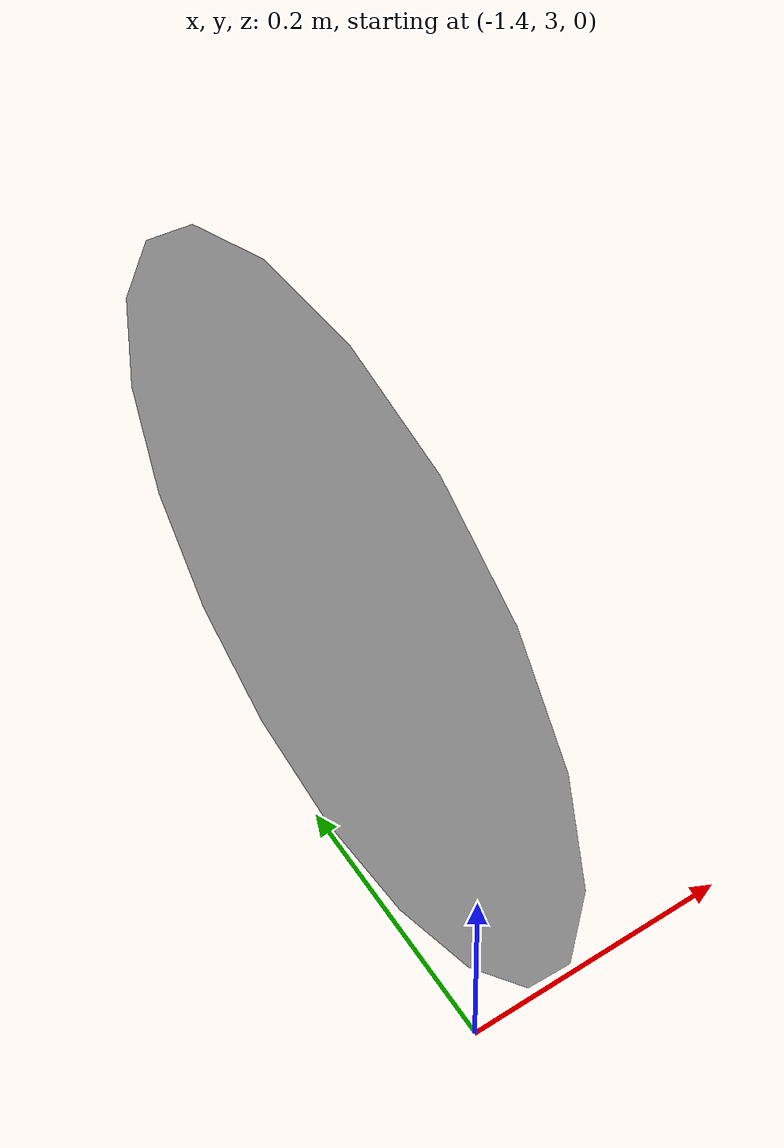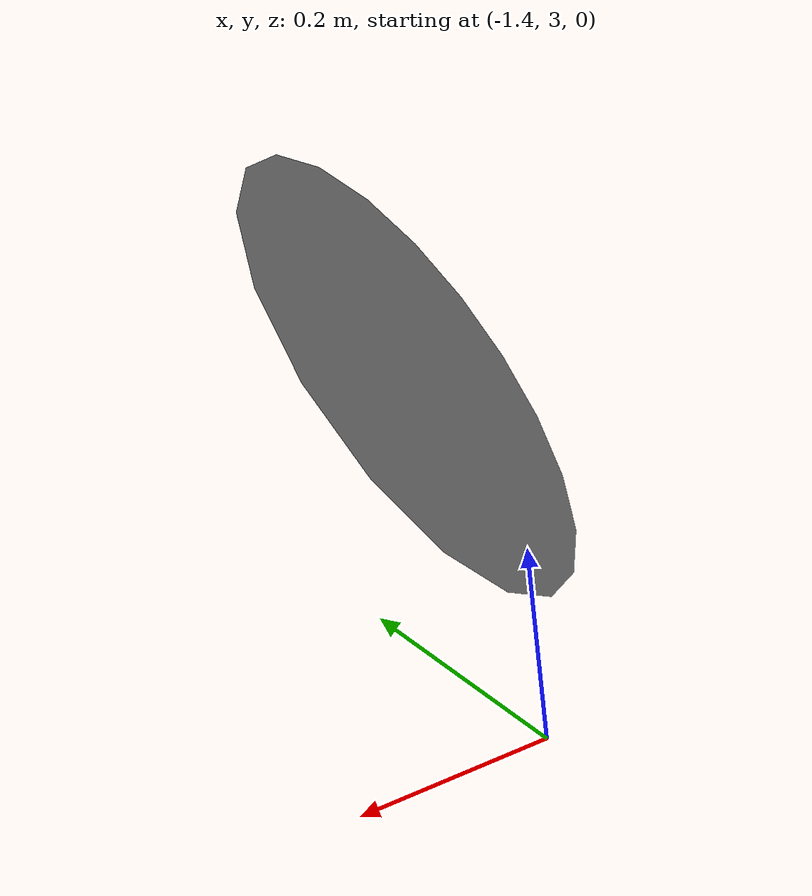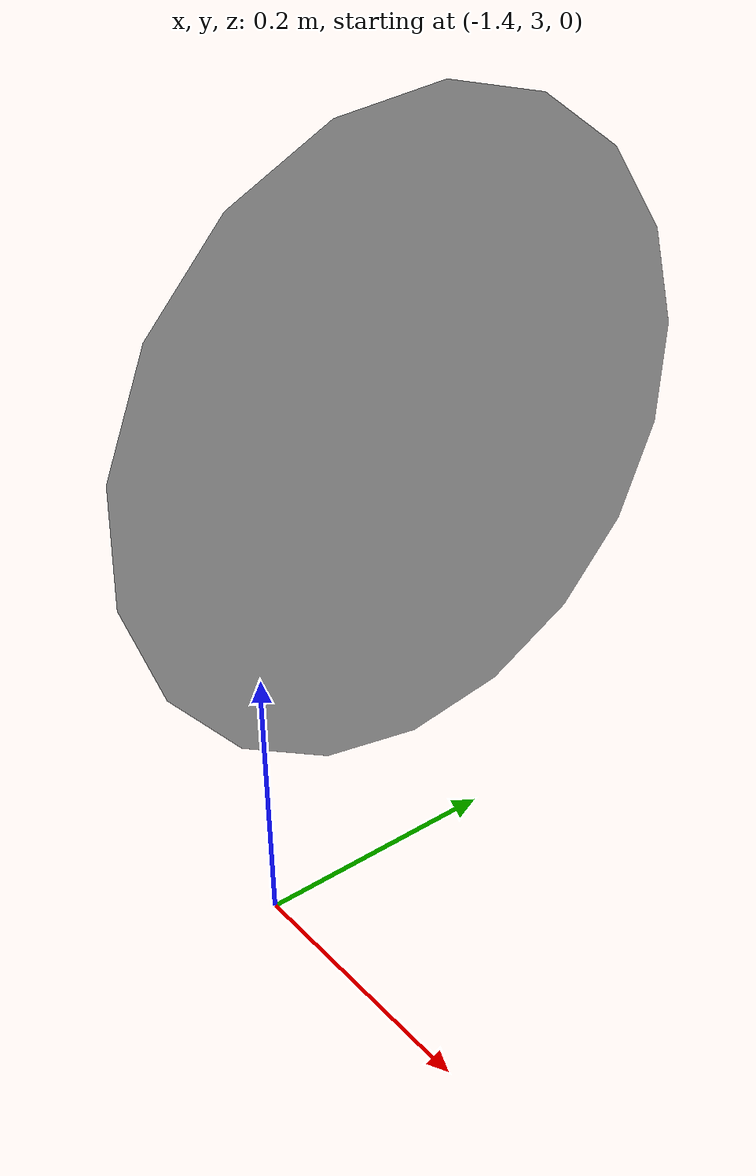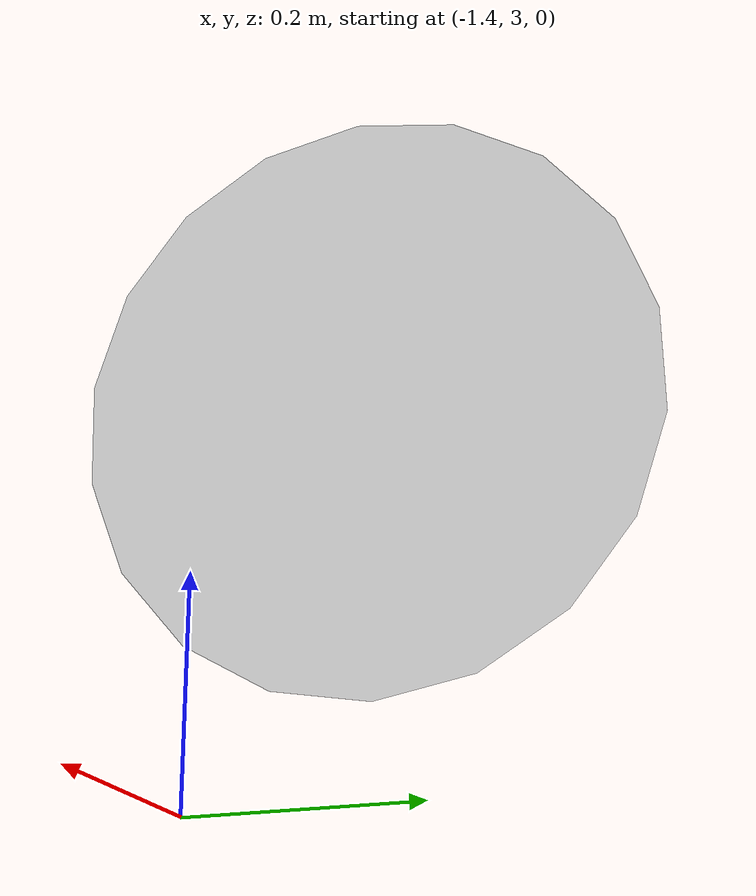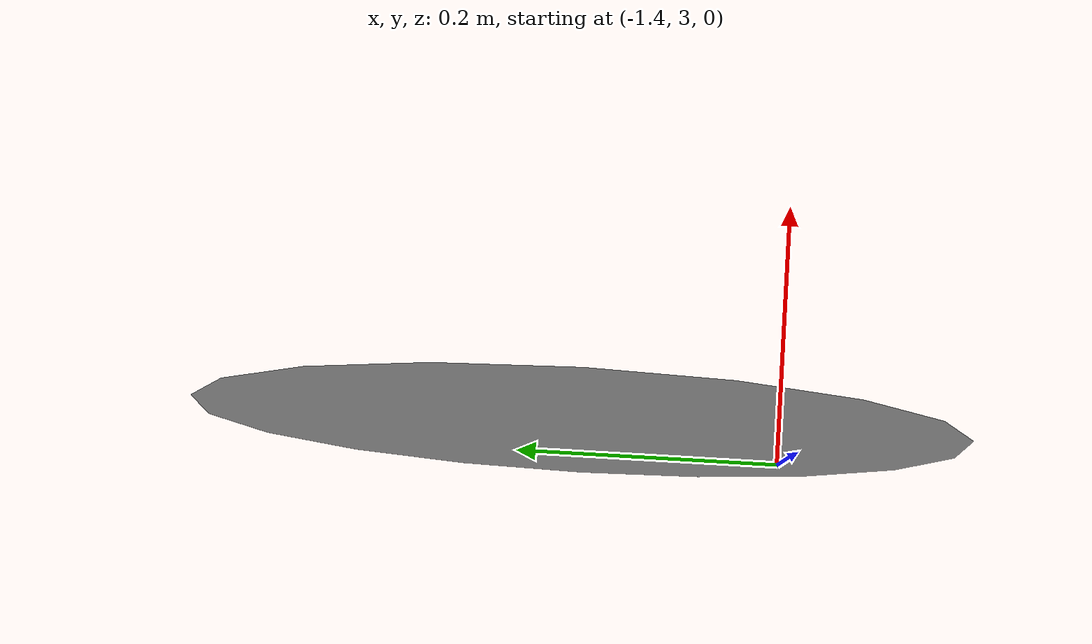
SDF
<?xml version="1.0" ?>
<sdf version="1.4">
  <model name="AR">
    <pose>-1.4 3.15 0.333  0 1.5 3.1416</pose>
     <static>true</static>
    <link name="link">
      <collision name="collision">
        <geometry>
          <mesh>
            <uri>model://target/AR.DAE</uri>
          </mesh>
        </geometry>
      </collision>
      <visual name="visual">
        <geometry>
          <mesh>
            <uri>model://target/AR.DAE</uri>
          </mesh>
        </geometry>
      </visual>
    </link>
  </model>
</sdf>
